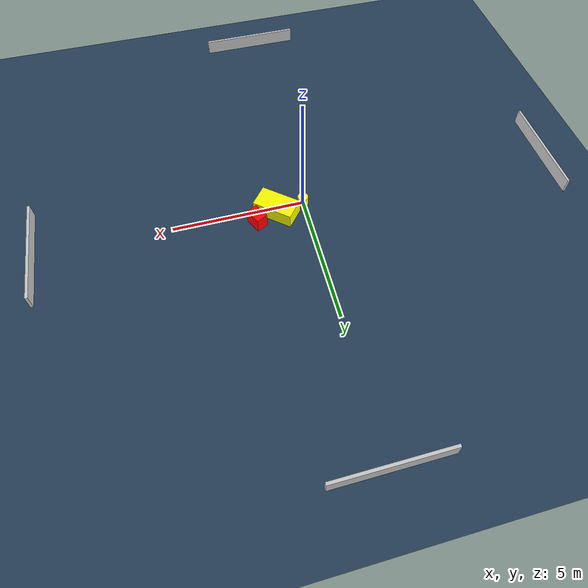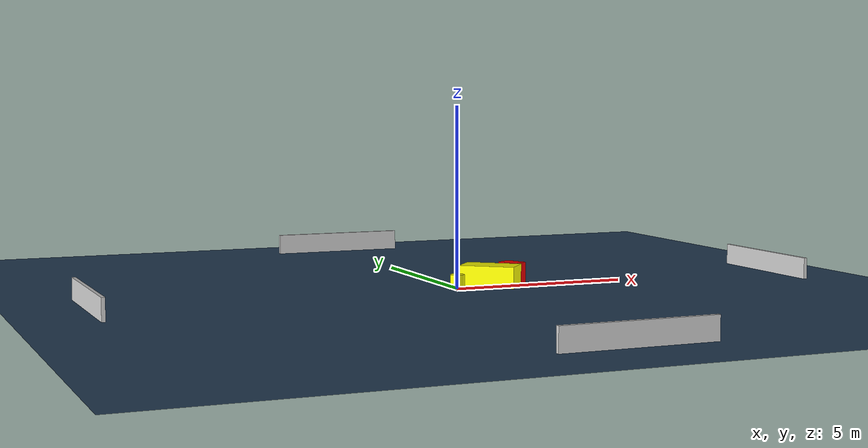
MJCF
<?xml version="1.0" ?>
<mujoco model="generated_environment">
  <option timestep="0.01" integrator="RK4" cone="elliptic"/>
  <default>
    <geom density="1"/>
  </default>
  <asset>
    <texture builtin="gradient" height="3072" name="skybox" rgb1="0.3 0.5 0.7" rgb2="0 0 0" type="skybox" width="512"/>
    <texture builtin="checker" height="300" name="groundplane" rgb1="0.2 0.3 0.4" rgb2="0.1 0.2 0.3" type="2d" width="300"/>
    <material name="groundplane" reflectance="0.2" texrepeat="5 5" texture="groundplane"/>
  </asset>
  <worldbody>
    <light dir="0 0 -1" directional="true" pos="0 0 1.5"/>
    <geom condim="3" friction="0.5 0.005 0.001" material="groundplane" name="floor" pos="0 0 0" size="0 0 0.05" type="plane"/>
    <body name="walls">
      <geom name="wall_1" condim="4" pos="-10.0 0.0 0.3" rgba="0.800000011920929 0.800000011920929 0.800000011920929 1.0" size="0.05 2.0 0.3" type="box"/>
      <geom name="wall_2" condim="4" pos="10.0 0.0 0.3" rgba="0.800000011920929 0.800000011920929 0.800000011920929 1.0" size="0.05 2.0 0.3" type="box"/>
      <geom name="wall_3" condim="4" pos="0.0 -10.0 0.3" rgba="0.800000011920929 0.800000011920929 0.800000011920929 1.0" size="2.0 0.05 0.3" type="box"/>
      <geom name="wall_4" condim="4" pos="0.0 10.0 0.3" rgba="0.800000011920929 0.800000011920929 0.800000011920929 1.0" size="2.0 0.05 0.3" type="box"/>
    </body>
    <body name="robot">
      <joint name="joint_x" type="slide" pos="0 0 0" axis="1 0 0"/>
      <joint name="joint_y" type="slide" pos="0 0 0" axis="0 1 0"/>
      <geom name="robot" type="cylinder" pos="0.0 0.0 0.2" size="0.2 0.2 0.0" mass="5.0" friction="1.0 0.005 0.0001" condim="4" rgba="1.0 1.0 0.0 1.0"/>
    </body>
    <body name="obstacle_1_movable">
      <geom name="obstacle_1_movable" condim="4" pos="1.0633103035535045 0.15372994582794386 0.3" euler="0 0 140.1333207906262" friction="0.0 0.005 0.001" rgba="1.0 1.0 0.0 1.0" size="0.7727484276596699 0.4208241579756242 0.3" type="box" mass="0.1"/>
      <joint type="free"/>
    </body>
    <body name="obstacle_2_static">
      <geom name="obstacle_2_static" condim="4" pos="1.881800539666395 0.48678104176431825 0.3" euler="0 0 26.95765045816911" friction="0.0 0.005 0.001" rgba="1.0 0.0 0.0 1.0" size="0.22300393368623062 0.3128800150503792 0.3" type="box"/>
    </body>
  </worldbody>
  <actuator>
    <motor name="actuator_x" joint="joint_x" gear="1" ctrlrange="-1 1"/>
    <motor name="actuator_y" joint="joint_y" gear="1" ctrlrange="-1 1"/>
  </actuator>
</mujoco>
